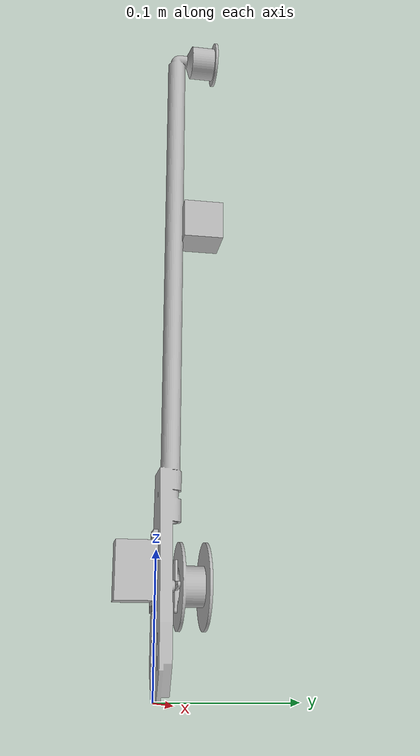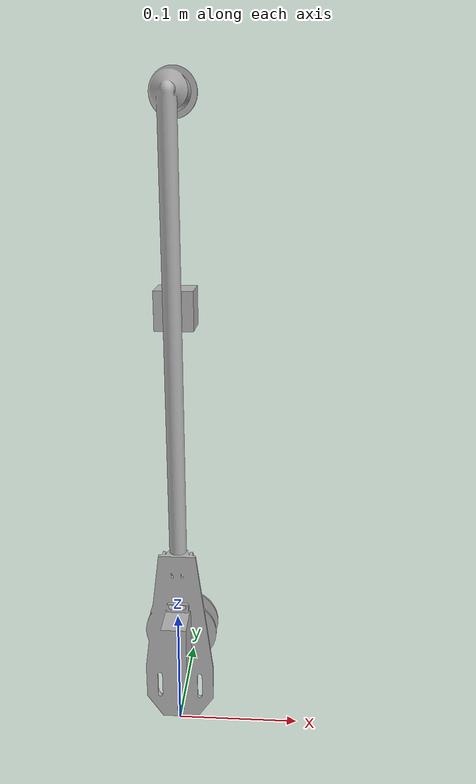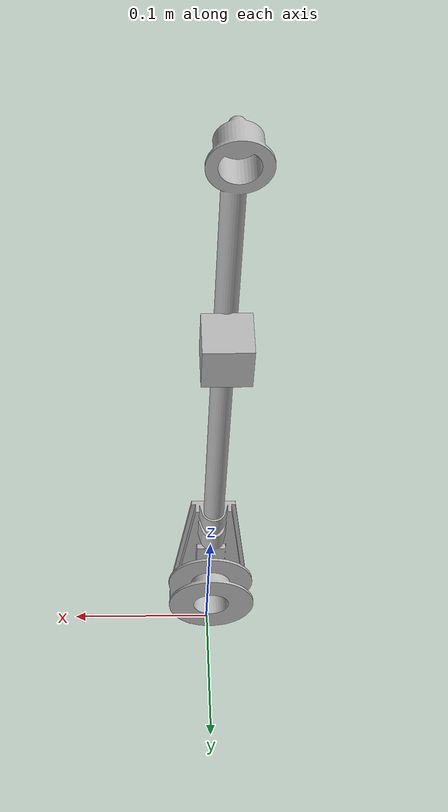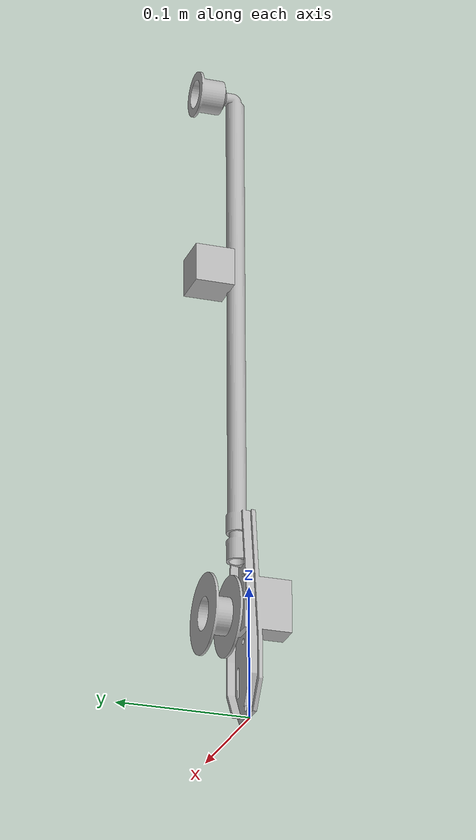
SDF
<sdf version='1.6'>
  <model name='front_actuator'>
    <link name='fixed_part_link'>
      <pose>0 0 0 0 0 0</pose>
      <inertial>
        <pose>0 0 0 0 0 0</pose>
        <mass>0.151</mass>
        <inertia>
          <ixx>1.733e-3</ixx>
          <ixy>0</ixy>
          <ixz>0</ixz>
          <iyy>1.711E-3</iyy>
          <iyz>-1.007E-4</iyz>
          <izz>4.3106E-5</izz>
        </inertia>
      </inertial>
      <collision name='front_actuator_collision'>
        <pose>0 0 0.26 0 0 0</pose>
        <geometry>
          <box>
            <size>0.07 0.07 0.52</size>
          </box>
        </geometry>
        <surface>
          <contact>
            <ode>
              <min_depth>0.001</min_depth>
              <max_vel>0</max_vel>
            </ode>
          </contact>
          <friction>
            <ode/>
          </friction>
        </surface>
      </collision>
      <visual name='front_actuator_visual'>
        <pose>0 0 0 0 0 0</pose>
        <geometry>
          <mesh>
            <scale>1 1 1</scale>
            <uri>model://meshes/Assembly_Linear-Actuator-Fixed-Parts.obj</uri>
          </mesh>
        </geometry>
      </visual>
      <gravity>1</gravity>
      <velocity_decay/>
    </link>

    <link name='moving_block_link'>
      <!-- defualt pose: 0 0.015 0.17 0 0 0 -->
      <!-- change z-value to change block position on the actuator -->
      <pose>0 0.03 0.35 0 0 0</pose>
      <inertial>
        <pose>0 0 0 0 0 0</pose>
        <mass>0.225</mass>
        <inertia>
          <iyy>0.3375e-04</iyy>
          <ixx>0.3375e-04</ixx>
          <izz>0.3375e-04</izz>
          <ixy>0</ixy>
          <ixz>0</ixz>
          <iyz>0</iyz>
        </inertia>
      </inertial>
      <collision name='moving_block_collision'>
        <pose>0 0 0 0 0 0</pose>
        <geometry>
          <box>
            <size>0.03 0.03 0.03</size>
          </box>
        </geometry>
        <surface>
          <contact>
            <ode>
              <min_depth>0.001</min_depth>
              <max_vel>0</max_vel>
            </ode>
          </contact>
          <friction>
            <ode/>
          </friction>
        </surface>
      </collision>
      <visual name='moving_block_visual'>
        <pose>0 0 0 0 0 0</pose>
        <geometry>
          <box>
            <size>0.03 0.03 0.03</size>
          </box>
        </geometry>
      </visual>
      <gravity>1</gravity>
      <velocity_decay/>
    </link>

    <joint name="front_actuator_joint" type="fixed">
      <parent>fixed_part_link</parent>
      <child>moving_block_link</child>
    </joint>

  </model>
</sdf>
